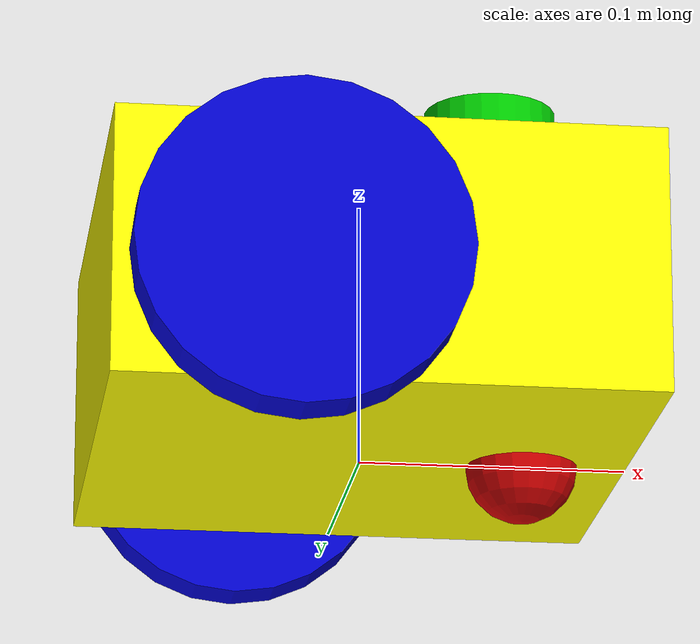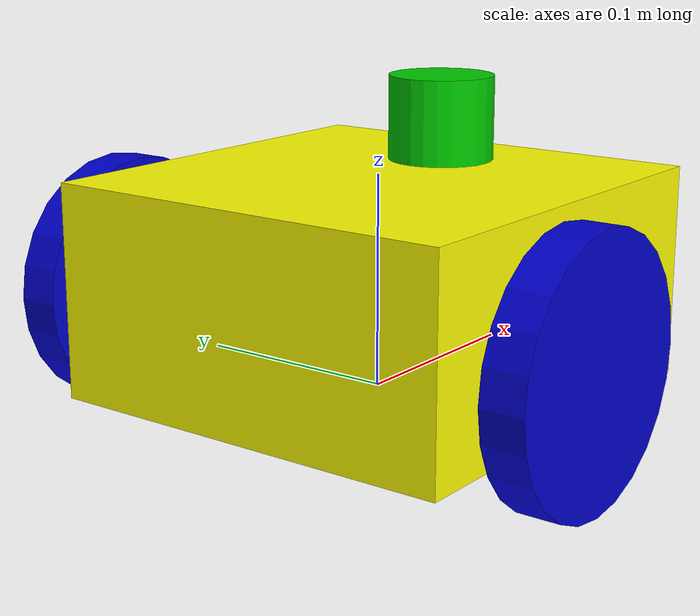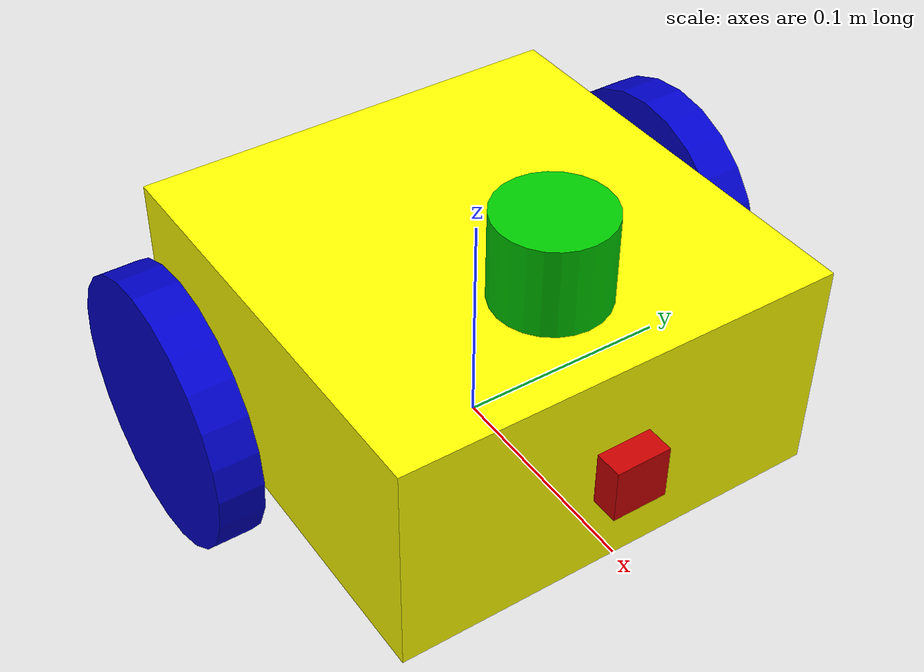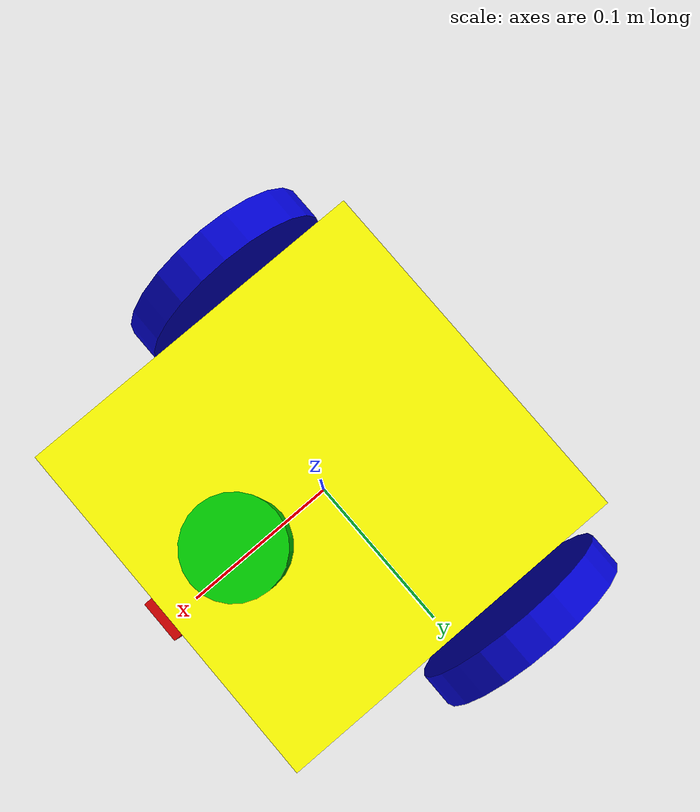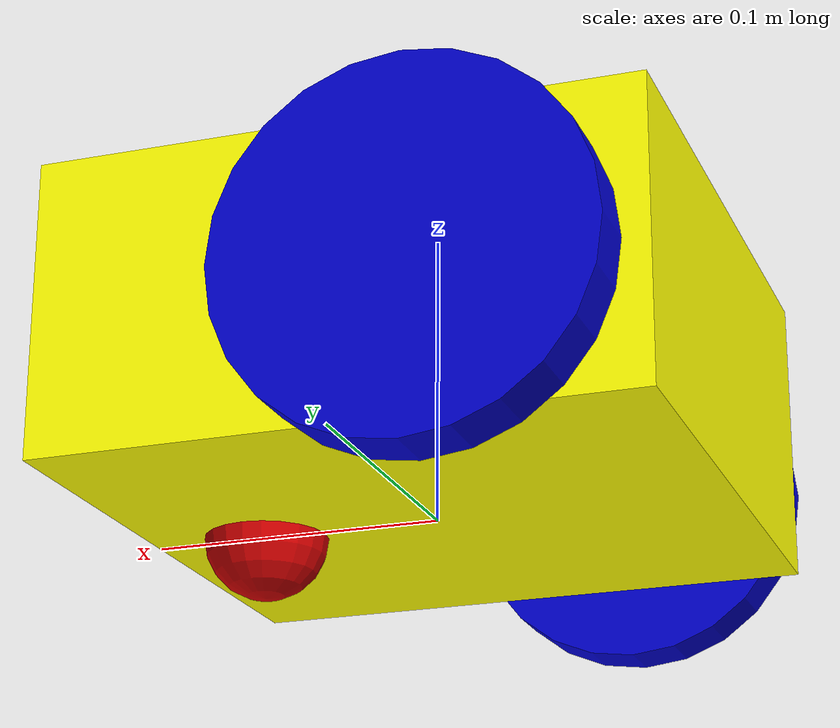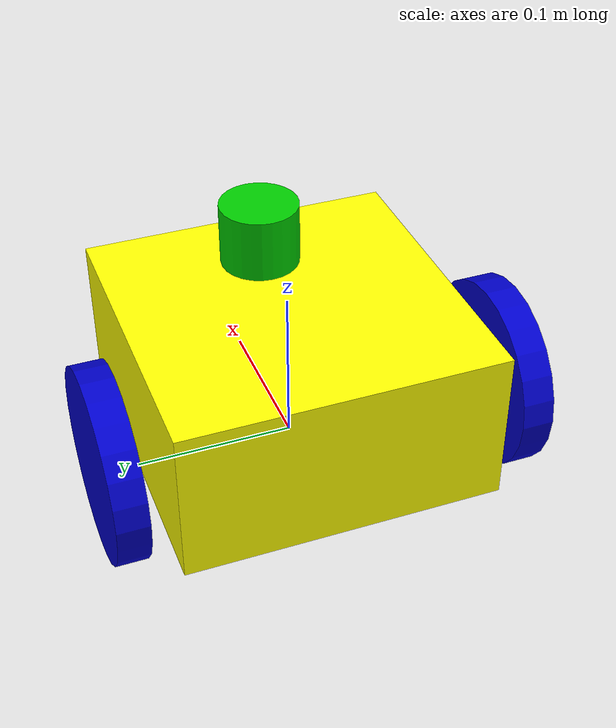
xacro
<?xml version="1.0"?>
<robot xmlns:xacro="http://www.ros.org/wiki/xacro"  name="bot">

    <!-- Robot Structure-->
    <xacro:include filename="structure.xacro"/>

    <!-- Ros2 Control -->
    <xacro:include filename="ros2_control.xacro"/>

    <!-- Lidar-->
    <xacro:include filename="lidar.xacro"/>

    <!-- Camera -->
    <xacro:include filename="camera.xacro"/>

</robot>

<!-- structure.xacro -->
<robot xmlns:xacro="http://www.ros.org/wiki/xacro">

    <xacro:include filename="macro_inertia.xacro"/>

    <!-- Colors -->

    <material name="black">
        <color rgba="0.0 0.0 0.0 1.0"/>
    </material>

    <material name="dark">
        <color rgba="0.3 0.3 0.3 1.0"/>
    </material>
    <material name="light_black">
        <color rgba="0.4 0.4 0.4 1.0"/>
    </material>

    <material name="blue">
        <color rgba="0.0 0.0 0.8 1.0"/>
    </material>

    <material name="green">
        <color rgba="0.0 0.8 0.0 1.0"/>
    </material>

    <material name="grey">
        <color rgba="0.5 0.5 0.5 1.0"/>
    </material>

    <material name="yellow">
        <color rgba="1.0 1.0 0.0 1.0"/>
    </material>

    <material name="orange">
        <color rgba="${255/255} ${108/255} ${10/255} 1.0"/>
    </material>

    <material name="brown">
        <color rgba="${222/255} ${207/255} ${195/255} 1.0"/>
    </material>

    <material name="red">
        <color rgba="0.8 0.0 0.0 1.0"/>
    </material>

    <material name="white">
        <color rgba="1.0 1.0 1.0 1.0"/>
    </material>

    <!-- Base Link -->
    <link name="base_link"></link>

    <!-- Base Footprint -->
    <joint name="base_footprint_joint" type="fixed">
        <parent link="base_link"/>
        <child link="base_footprint"/>
        <origin xyz="0 0 0" rpy="0 0 0"/>
    </joint>

    <link name="base_footprint"></link>

    <!-- CHASSIS LINK-->
    <joint name="chassis_joint" type="fixed">
        <parent link ="base_link"/>
        <child link ="chassis"/>
        <origin xyz="-0.1 0 0"/>
    </joint>

    <link name="chassis">
        <visual>
            <origin xyz="0.1 0 0.05"/>
            <geometry>
                <box size="0.2 0.2 0.1"/>
            </geometry>
            <material name="yellow"/>
        </visual>
        <collision>
            <origin xyz="0.1 0 0.05"/>
            <geometry>
                <box size="0.2 0.2 0.1"/>
            </geometry>
        </collision>
        <xacro:inertial_box mass="0.2" x="0.2" y="0.2" z="0.1">
            <origin xyz="0.225 0 0.025" rpy="0 0 0"/>
        </xacro:inertial_box>
    </link>

    <!-- LEFT WHEEL LINK -->

    <joint name="left_wheel_joint" type="continuous">
        <parent link="base_link"/>
        <child link="left_wheel"/>
        <origin xyz="-0.035 0.125 0.04" rpy="-${pi/2} 0 0" />
        <axis xyz="0 0 1"/>
    </joint>

    <link name="left_wheel">
        <visual>
            <geometry>
                <cylinder radius="0.06" length="0.02"/>
            </geometry>
            <material name="blue"/>
        </visual>
        <collision>
            <geometry>
                <cylinder radius="0.06" length="0.02"/>
            </geometry>
        </collision>
        <xacro:inertial_cylinder mass="0.1" length="0.02" radius="0.06">
            <origin xyz="0 0 0" rpy="0 0 0"/>
        </xacro:inertial_cylinder>
    </link>

    <!-- RIGHT WHEEL LINK -->

    <joint name="right_wheel_joint" type="continuous">
        <parent link="base_link"/>
        <child link="right_wheel"/>
        <origin xyz="-0.035 -0.125 0.04" rpy="${pi/2} 0 0" />
        <axis xyz="0 0 -1"/>
    </joint>

    <link name="right_wheel">
        <visual>
            <geometry>
                <cylinder radius="0.06" length="0.02"/>
            </geometry>
            <material name="blue"/>
        </visual>
        <collision>
            <geometry>
                <cylinder radius="0.06" length="0.02"/>
            </geometry>
        </collision>
        <xacro:inertial_cylinder mass="0.1" length="0.02" radius="0.06">
            <origin xyz="0 0 0" rpy="0 0 0"/>
        </xacro:inertial_cylinder>
    </link>

    <!-- CASTER WHEEL LINK -->

    <joint name="caster_wheel_joint" type="fixed">
        <parent link="base_link"/>
        <child link="caster_wheel"/>
        <origin xyz="0.061 0.0 0.0"/>
    </joint>

    <link name="caster_wheel">
        <visual>
            <geometry>
                <sphere radius="0.021"/>
            </geometry>
            <material name="red"/>
        </visual>
        <collision>
            <geometry>
                <sphere radius="0.021"/>
            </geometry>

            <surface>
                <friction>
                    <ode>
                        <mu>0.001</mu>
                        <mu2>0.001</mu2>
                    </ode>
                </friction>
            </surface>

        </collision>
        <xacro:inertial_sphere mass="0.1" radius="0.021">
            <origin xyz="0 0 0" rpy="0 0 0"/>
        </xacro:inertial_sphere>
    </link>

    <gazebo reference="caster_wheel">
        <mu1 value="0.001"/>
        <mu2 value="0.001"/>
    </gazebo>

</robot>

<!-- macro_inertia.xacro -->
<robot xmlns:xacro="http://www.ros.org/wiki/xacro" >

    <!-- Some standard inertial calculations https://en.wikipedia.org/wiki/List_of_moments_of_inertia -->

    <xacro:macro name="inertial_sphere" params="mass radius *origin">
        <inertial>
            <xacro:insert_block name="origin"/>
            <mass value="${mass}" />
            <inertia ixx="${(2/5) * mass * (radius*radius)}" ixy="0.0" ixz="0.0"
                    iyy="${(2/5) * mass * (radius*radius)}" iyz="0.0"
                    izz="${(2/5) * mass * (radius*radius)}" />
        </inertial>
    </xacro:macro>

    <xacro:macro name="inertial_box" params="mass x y z *origin">
        <inertial>
            <xacro:insert_block name="origin"/>
            <mass value="${mass}" />
            <inertia ixx="${(1/12) * mass * (y*y+z*z)}" ixy="0.0" ixz="0.0"
                    iyy="${(1/12) * mass * (x*x+z*z)}" iyz="0.0"
                    izz="${(1/12) * mass * (x*x+y*y)}" />
        </inertial>
    </xacro:macro>

    <xacro:macro name="inertial_cylinder" params="mass length radius *origin">
        <inertial>
            <xacro:insert_block name="origin"/>
            <mass value="${mass}" />
            <inertia ixx="${(1/12) * mass * (3*radius*radius + length*length)}" ixy="0.0" ixz="0.0"
                    iyy="${(1/12) * mass * (3*radius*radius + length*length)}" iyz="0.0"
                    izz="${(1/2) * mass * (radius*radius)}" />
        </inertial>
    </xacro:macro>

</robot>

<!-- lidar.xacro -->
<robot xmlns:xacro="http://www.ros.org/wiki/xacro">

    <joint name="lidar_joint" type="fixed">
        <parent link="chassis"/>
        <child link="lidar_body"/>
        <origin xyz="0.15 0 0.18 " rpx="0 0 0"/>
    </joint>

    <link name="lidar_body">
        <visual>
            <origin xyz="0.0 0.0 -0.06"/>
            <geometry>
                <cylinder radius="0.025" length="0.04"/>
            </geometry>
            <material name="green"/>
        </visual>
        <collision>
            <geometry>
                <cylinder radius="0.025" length="0.04"/>
            </geometry>
        </collision>
        <xacro:inertial_cylinder mass="0.1" length="0.04" radius="0.025">
            <origin xyz="0 0 0" rpy="0 0 0"/>
        </xacro:inertial_cylinder>
    </link>

    <!-- Gazebo-->
    <gazebo reference="lidar_body">
        <material>Gazebo/Green</material>

        <sensor name="my_lidar" type="gpu_lidar">
            <pose> 0 0 0 0 0 0 </pose>
            <visualize>true</visualize>
            <update_rate>10</update_rate>
            <lidar>
                <scan>
                    <horizontal>
                        <samples>360</samples>
                        <min_angle>-3.14</min_angle>
                        <max_angle>3.14</max_angle>
                    </horizontal>
                </scan>
                <range>
                    <min>0.3</min>
                    <max>10</max>
                </range>
            </lidar>

            <topic>scan</topic>
            <gz_frame_id>lidar_body</gz_frame_id>

        </sensor>
    </gazebo>

</robot>

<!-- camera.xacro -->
<robot xmlns:xacro="http://www.ros.org/wiki/xacro">

    <joint name="camera_joint" type="fixed">
        <parent link="chassis"/>
        <child link="camera_body"/>
        <origin xyz="0.2 0 0.05 " rpx="0 0 0"/>
    </joint>

    <link name="camera_body">
        <visual>
            <origin xyz="0.0 0.0 0.0"/>
            <geometry>
                <box size="0.025 0.025 0.025"/>
            </geometry>
            <material name="red"/>
        </visual>
        <collision>
            <geometry>
                <box size="0.025 0.025 0.025"/>
            </geometry>
        </collision>
        <xacro:inertial_box mass="0.02" x="0" y="0" z="0">
            <origin xyz="0 0 0" rpy="0 0 0"/>
        </xacro:inertial_box>
    </link>

    <joint name="camera_optical_joint" type="fixed">
        <parent link="camera_body"/>
        <child link="camera_body_optical"/>
        <origin xyz="0 0 0" rpx="${pi/2} 0 ${pi/2}"/>
    </joint>

    <link name="camera_body_optical"></link>

    <!-- Gazebo-->
    <gazebo reference="camera_body">
        <material>Gazebo/Red</material>

        <sensor name="my_camera" type="camera">
            <pose> 0 0 0 0 0 0 </pose>
            <visualize>true</visualize>
            <update_rate>10</update_rate>
            <camera>
                <camera_info_topic>camera/camera_info</camera_info_topic>
                <horizontal_fov>1.089</horizontal_fov>          <!--In Radians-->
                <image>
                    <format>R8G8B8</format>
                    <width>640</width>
                    <height>480</height>
                </image>
                <clip>
                    <near>0.05</near>
                    <far>8.0</far>
                </clip>
            </camera>

            <topic>camera/image_raw</topic>
            <gz_frame_id>camera_body_optical</gz_frame_id>

        </sensor>
    </gazebo>

</robot>
